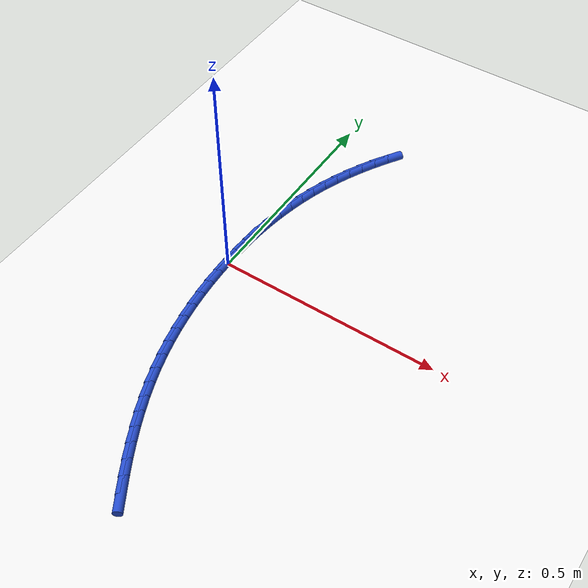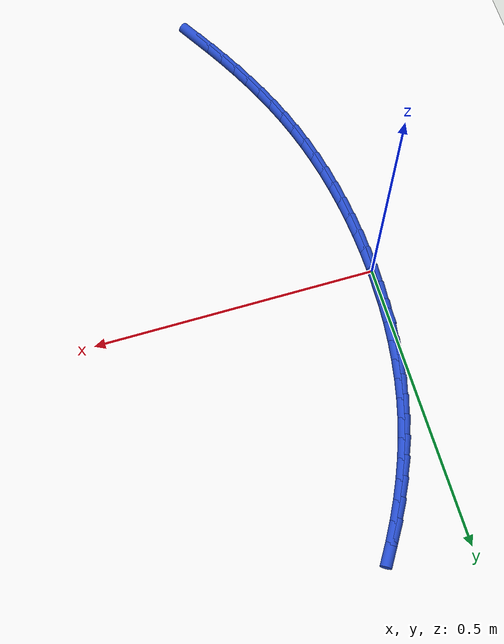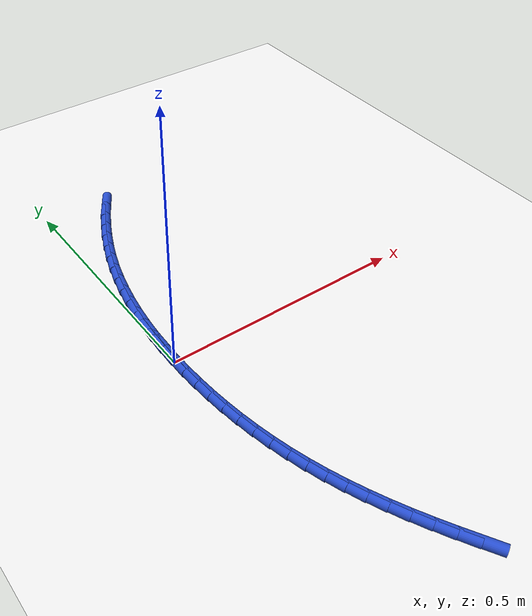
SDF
<sdf version="1.6">
 <world name="default">
  <model name="ground_plane">
   <static>1</static>
   <link name="link">
    <collision name="collision">
     <geometry><plane><normal>0 0 1</normal><size>100 100</size></plane></geometry>
     <surface><friction><ode><mu>100</mu><mu2>50</mu2></ode></friction></surface>
    </collision>
    <visual name="visual">
     <cast_shadows>0</cast_shadows>
     <geometry><plane><normal>0 0 1</normal><size>100 100</size></plane></geometry>
     <material>
      <script><uri>file://media/materials/scripts/gazebo.material</uri><name>Gazebo/WhiteGlow</name></script>
     </material>
    </visual>
   </link>
  </model>
  <model name="line">
   <link name="link_0">
    <pose>1.9949319973733282e-17 5.551115123125783e-17 0.01 0 1.57 1.5623673042592516</pose>
    <collision name="collision">
     <geometry><cylinder><radius>0.01</radius><length>0.08</length></cylinder></geometry>
    </collision>
    <visual name="visual">
     <material>
      <script><name>Gazebo/Blue</name><uri>file://media/materials/scripts/gazebo.material</uri></script>
     </material>
     <geometry><cylinder><radius>0.01</radius><length>0.08</length></cylinder></geometry>
    </visual>
   </link>
   <link name="link_1">
    <pose>0.0002909454988560638 0.03451629262906619 0.01 0 1.57 1.5297102532509206</pose>
    <collision name="collision">
     <geometry><cylinder><radius>0.01</radius><length>0.08</length></cylinder></geometry>
    </collision>
    <visual name="visual">
     <material>
      <script><name>Gazebo/Blue</name><uri>file://media/materials/scripts/gazebo.material</uri></script>
     </material>
     <geometry><cylinder><radius>0.01</radius><length>0.08</length></cylinder></geometry>
    </visual>
   </link>
   <link name="link_2">
    <pose>0.0017065868075871354 0.0689524052087415 0.01 0 1.57 1.4953168891294837</pose>
    <collision name="collision">
     <geometry><cylinder><radius>0.01</radius><length>0.08</length></cylinder></geometry>
    </collision>
    <visual name="visual">
     <material>
      <script><name>Gazebo/Blue</name><uri>file://media/materials/scripts/gazebo.material</uri></script>
     </material>
     <geometry><cylinder><radius>0.01</radius><length>0.08</length></cylinder></geometry>
    </visual>
   </link>
   <link name="link_3">
    <pose>0.0043013560823109195 0.1032642640348845 0.01 0 1.57 1.459138099619481</pose>
    <collision name="collision">
     <geometry><cylinder><radius>0.01</radius><length>0.08</length></cylinder></geometry>
    </collision>
    <visual name="visual">
     <material>
      <script><name>Gazebo/Blue</name><uri>file://media/materials/scripts/gazebo.material</uri></script>
     </material>
     <geometry><cylinder><radius>0.01</radius><length>0.08</length></cylinder></geometry>
    </visual>
   </link>
   <link name="link_4">
    <pose>0.00812968547914511 0.1374077954033538 0.01 0 1.57 1.4211382745538208</pose>
    <collision name="collision">
     <geometry><cylinder><radius>0.01</radius><length>0.08</length></cylinder></geometry>
    </collision>
    <visual name="visual">
     <material>
      <script><name>Gazebo/Blue</name><uri>file://media/materials/scripts/gazebo.material</uri></script>
     </material>
     <geometry><cylinder><radius>0.01</radius><length>0.08</length></cylinder></geometry>
    </visual>
   </link>
   <link name="link_5">
    <pose>0.013246007154207396 0.1713389256100079 0.01 0 1.57 1.3812991831218653</pose>
    <collision name="collision">
     <geometry><cylinder><radius>0.01</radius><length>0.08</length></cylinder></geometry>
    </collision>
    <visual name="visual">
     <material>
      <script><name>Gazebo/Blue</name><uri>file://media/materials/scripts/gazebo.material</uri></script>
     </material>
     <geometry><cylinder><radius>0.01</radius><length>0.08</length></cylinder></geometry>
    </visual>
   </link>
   <link name="link_6">
    <pose>0.019704753263615468 0.2050135809507054 0.01 0 1.57 1.3396241294312707</pose>
    <collision name="collision">
     <geometry><cylinder><radius>0.01</radius><length>0.08</length></cylinder></geometry>
    </collision>
    <visual name="visual">
     <material>
      <script><name>Gazebo/Blue</name><uri>file://media/materials/scripts/gazebo.material</uri></script>
     </material>
     <geometry><cylinder><radius>0.01</radius><length>0.08</length></cylinder></geometry>
    </visual>
   </link>
   <link name="link_7">
    <pose>0.027560355963487035 0.23838768772130486 0.01 0 1.57 1.296142189354954</pose>
    <collision name="collision">
     <geometry><cylinder><radius>0.01</radius><length>0.08</length></cylinder></geometry>
    </collision>
    <visual name="visual">
     <material>
      <script><name>Gazebo/Blue</name><uri>file://media/materials/scripts/gazebo.material</uri></script>
     </material>
     <geometry><cylinder><radius>0.01</radius><length>0.08</length></cylinder></geometry>
    </visual>
   </link>
   <link name="link_8">
    <pose>0.03686724740993974 0.2714171722176647 0.01 0 1.57 1.2509273169655566</pose>
    <collision name="collision">
     <geometry><cylinder><radius>0.01</radius><length>0.08</length></cylinder></geometry>
    </collision>
    <visual name="visual">
     <material>
      <script><name>Gazebo/Blue</name><uri>file://media/materials/scripts/gazebo.material</uri></script>
     </material>
     <geometry><cylinder><radius>0.01</radius><length>0.08</length></cylinder></geometry>
    </visual>
   </link>
   <link name="link_9">
    <pose>0.047679331502748376 0.3040580137497771 0.01 0 1.57 1.2053582620434384</pose>
    <collision name="collision">
     <geometry><cylinder><radius>0.01</radius><length>0.08</length></cylinder></geometry>
    </collision>
    <visual name="visual">
     <material>
      <script><name>Gazebo/Blue</name><uri>file://media/materials/scripts/gazebo.material</uri></script>
     </material>
     <geometry><cylinder><radius>0.01</radius><length>0.08</length></cylinder></geometry>
    </visual>
   </link>
   <link name="link_10">
    <pose>0.060004717376022476 0.33627078744526323 0.01 0 1.57 1.1617174851392114</pose>
    <collision name="collision">
     <geometry><cylinder><radius>0.01</radius><length>0.08</length></cylinder></geometry>
    </collision>
    <visual name="visual">
     <material>
      <script><name>Gazebo/Blue</name><uri>file://media/materials/scripts/gazebo.material</uri></script>
     </material>
     <geometry><cylinder><radius>0.01</radius><length>0.08</length></cylinder></geometry>
    </visual>
   </link>
   <link name="link_11">
    <pose>0.07377095935128009 0.36802415265758376 0.01 0 1.57 1.1201609324612012</pose>
    <collision name="collision">
     <geometry><cylinder><radius>0.01</radius><length>0.08</length></cylinder></geometry>
    </collision>
    <visual name="visual">
     <material>
      <script><name>Gazebo/Blue</name><uri>file://media/materials/scripts/gazebo.material</uri></script>
     </material>
     <geometry><cylinder><radius>0.01</radius><length>0.08</length></cylinder></geometry>
    </visual>
   </link>
   <link name="link_12">
    <pose>0.08889742850880628 0.39928758998436864 0.01 0 1.57 1.0805907010333862</pose>
    <collision name="collision">
     <geometry><cylinder><radius>0.01</radius><length>0.08</length></cylinder></geometry>
    </collision>
    <visual name="visual">
     <material>
      <script><name>Gazebo/Blue</name><uri>file://media/materials/scripts/gazebo.material</uri></script>
     </material>
     <geometry><cylinder><radius>0.01</radius><length>0.08</length></cylinder></geometry>
    </visual>
   </link>
   <link name="link_13">
    <pose>0.10530349592888621 0.4300305800232486 0.01 0 1.57 1.0428943098141974</pose>
    <collision name="collision">
     <geometry><cylinder><radius>0.01</radius><length>0.08</length></cylinder></geometry>
    </collision>
    <visual name="visual">
     <material>
      <script><name>Gazebo/Blue</name><uri>file://media/materials/scripts/gazebo.material</uri></script>
     </material>
     <geometry><cylinder><radius>0.01</radius><length>0.08</length></cylinder></geometry>
    </visual>
   </link>
   <link name="link_14">
    <pose>0.122908532691805 0.4602226033718537 0.01 0 1.57 1.006949480206665</pose>
    <collision name="collision">
     <geometry><cylinder><radius>0.01</radius><length>0.08</length></cylinder></geometry>
    </collision>
    <visual name="visual">
     <material>
      <script><name>Gazebo/Blue</name><uri>file://media/materials/scripts/gazebo.material</uri></script>
     </material>
     <geometry><cylinder><radius>0.01</radius><length>0.08</length></cylinder></geometry>
    </visual>
   </link>
   <link name="link_193">
    <pose>0.16569128008060713 -0.5503210508945563 0.01 0 1.57 -1.0292047934752364</pose>
    <collision name="collision">
     <geometry><cylinder><radius>0.01</radius><length>0.08</length></cylinder></geometry>
    </collision>
    <visual name="visual">
     <material>
      <script><name>Gazebo/Blue</name><uri>file://media/materials/scripts/gazebo.material</uri></script>
     </material>
     <geometry><cylinder><radius>0.01</radius><length>0.08</length></cylinder></geometry>
    </visual>
   </link>
   <link name="link_194">
    <pose>0.14743791719852486 -0.5199794419533103 0.01 0 1.57 -1.0510613342607587</pose>
    <collision name="collision">
     <geometry><cylinder><radius>0.01</radius><length>0.08</length></cylinder></geometry>
    </collision>
    <visual name="visual">
     <material>
      <script><name>Gazebo/Blue</name><uri>file://media/materials/scripts/gazebo.material</uri></script>
     </material>
     <geometry><cylinder><radius>0.01</radius><length>0.08</length></cylinder></geometry>
    </visual>
   </link>
   <link name="link_195">
    <pose>0.13009624071883205 -0.48967295221450496 0.01 0 1.57 -1.0756627278853617</pose>
    <collision name="collision">
     <geometry><cylinder><radius>0.01</radius><length>0.08</length></cylinder></geometry>
    </collision>
    <visual name="visual">
     <material>
      <script><name>Gazebo/Blue</name><uri>file://media/materials/scripts/gazebo.material</uri></script>
     </material>
     <geometry><cylinder><radius>0.01</radius><length>0.08</length></cylinder></geometry>
    </visual>
   </link>
   <link name="link_196">
    <pose>0.11370524300098266 -0.45931927709053777 0.01 0 1.57 -1.1029651897677524</pose>
    <collision name="collision">
     <geometry><cylinder><radius>0.01</radius><length>0.08</length></cylinder></geometry>
    </collision>
    <visual name="visual">
     <material>
      <script><name>Gazebo/Blue</name><uri>file://media/materials/scripts/gazebo.material</uri></script>
     </material>
     <geometry><cylinder><radius>0.01</radius><length>0.08</length></cylinder></geometry>
    </visual>
   </link>
   <link name="link_197">
    <pose>0.09830391640443162 -0.4288361119938083 0.01 0 1.57 -1.1328765002648287</pose>
    <collision name="collision">
     <geometry><cylinder><radius>0.01</radius><length>0.08</length></cylinder></geometry>
    </collision>
    <visual name="visual">
     <material>
      <script><name>Gazebo/Blue</name><uri>file://media/materials/scripts/gazebo.material</uri></script>
     </material>
     <geometry><cylinder><radius>0.01</radius><length>0.08</length></cylinder></geometry>
    </visual>
   </link>
   <link name="link_198">
    <pose>0.08393125328863284 -0.3981411523367139 0.01 0 1.57 -1.1652509214708162</pose>
    <collision name="collision">
     <geometry><cylinder><radius>0.01</radius><length>0.08</length></cylinder></geometry>
    </collision>
    <visual name="visual">
     <material>
      <script><name>Gazebo/Blue</name><uri>file://media/materials/scripts/gazebo.material</uri></script>
     </material>
     <geometry><cylinder><radius>0.01</radius><length>0.08</length></cylinder></geometry>
    </visual>
   </link>
   <link name="link_199">
    <pose>0.07062624601304053 -0.36715209353165296 0.01 0 1.57 -1.1998862284343892</pose>
    <collision name="collision">
     <geometry><cylinder><radius>0.01</radius><length>0.08</length></cylinder></geometry>
    </collision>
    <visual name="visual">
     <material>
      <script><name>Gazebo/Blue</name><uri>file://media/materials/scripts/gazebo.material</uri></script>
     </material>
     <geometry><cylinder><radius>0.01</radius><length>0.08</length></cylinder></geometry>
    </visual>
   </link>
   <link name="link_200">
    <pose>0.05842788693710896 -0.3357866309910235 0.01 0 1.57 -1.2365237159026548</pose>
    <collision name="collision">
     <geometry><cylinder><radius>0.01</radius><length>0.08</length></cylinder></geometry>
    </collision>
    <visual name="visual">
     <material>
      <script><name>Gazebo/Blue</name><uri>file://media/materials/scripts/gazebo.material</uri></script>
     </material>
     <geometry><cylinder><radius>0.01</radius><length>0.08</length></cylinder></geometry>
    </visual>
   </link>
   <link name="link_201">
    <pose>0.04737516842029235 -0.3039624601272238 0.01 0 1.57 -1.2746813853770274</pose>
    <collision name="collision">
     <geometry><cylinder><radius>0.01</radius><length>0.08</length></cylinder></geometry>
    </collision>
    <visual name="visual">
     <material>
      <script><name>Gazebo/Blue</name><uri>file://media/materials/scripts/gazebo.material</uri></script>
     </material>
     <geometry><cylinder><radius>0.01</radius><length>0.08</length></cylinder></geometry>
    </visual>
   </link>
   <link name="link_202">
    <pose>0.03750384743618298 -0.27160643986606714 0.01 0 1.57 -1.3124542245453776</pose>
    <collision name="collision">
     <geometry><cylinder><radius>0.01</radius><length>0.08</length></cylinder></geometry>
    </collision>
    <visual name="visual">
     <material>
      <script><name>Gazebo/Blue</name><uri>file://media/materials/scripts/gazebo.material</uri></script>
     </material>
     <geometry><cylinder><radius>0.01</radius><length>0.08</length></cylinder></geometry>
    </visual>
   </link>
   <link name="link_203">
    <pose>0.028817832220894016 -0.23873563362385172 0.01 0 1.57 -1.3489526898535336</pose>
    <collision name="collision">
     <geometry><cylinder><radius>0.01</radius><length>0.08</length></cylinder></geometry>
    </collision>
    <visual name="visual">
     <material>
      <script><name>Gazebo/Blue</name><uri>file://media/materials/scripts/gazebo.material</uri></script>
     </material>
     <geometry><cylinder><radius>0.01</radius><length>0.08</length></cylinder></geometry>
    </visual>
   </link>
   <link name="link_204">
    <pose>0.021302925258408566 -0.20541838534711937 0.01 0 1.57 -1.38428924510956</pose>
    <collision name="collision">
     <geometry><cylinder><radius>0.01</radius><length>0.08</length></cylinder></geometry>
    </collision>
    <visual name="visual">
     <material>
      <script><name>Gazebo/Blue</name><uri>file://media/materials/scripts/gazebo.material</uri></script>
     </material>
     <geometry><cylinder><radius>0.01</radius><length>0.08</length></cylinder></geometry>
    </visual>
   </link>
   <link name="link_205">
    <pose>0.014944720177434298 -0.17172363051869377 0.01 0 1.57 -1.4185886301740562</pose>
    <collision name="collision">
     <geometry><cylinder><radius>0.01</radius><length>0.08</length></cylinder></geometry>
    </collision>
    <visual name="visual">
     <material>
      <script><name>Gazebo/Blue</name><uri>file://media/materials/scripts/gazebo.material</uri></script>
     </material>
     <geometry><cylinder><radius>0.01</radius><length>0.08</length></cylinder></geometry>
    </visual>
   </link>
   <link name="link_206">
    <pose>0.009728810606678922 -0.1377203046213988 0.01 0 1.57 -1.4519758890947336</pose>
    <collision name="collision">
     <geometry><cylinder><radius>0.01</radius><length>0.08</length></cylinder></geometry>
    </collision>
    <visual name="visual">
     <material>
      <script><name>Gazebo/Blue</name><uri>file://media/materials/scripts/gazebo.material</uri></script>
     </material>
     <geometry><cylinder><radius>0.01</radius><length>0.08</length></cylinder></geometry>
    </visual>
   </link>
   <link name="link_207">
    <pose>0.00564079017485012 -0.1034773431380582 0.01 0 1.57 -1.484575826198701</pose>
    <collision name="collision">
     <geometry><cylinder><radius>0.01</radius><length>0.08</length></cylinder></geometry>
    </collision>
    <visual name="visual">
     <material>
      <script><name>Gazebo/Blue</name><uri>file://media/materials/scripts/gazebo.material</uri></script>
     </material>
     <geometry><cylinder><radius>0.01</radius><length>0.08</length></cylinder></geometry>
    </visual>
   </link>
   <link name="link_208">
    <pose>0.0026662525106555786 -0.06906368155149568 0.01 0 1.57 -1.5165128086413957</pose>
    <collision name="collision">
     <geometry><cylinder><radius>0.01</radius><length>0.08</length></cylinder></geometry>
    </collision>
    <visual name="visual">
     <material>
      <script><name>Gazebo/Blue</name><uri>file://media/materials/scripts/gazebo.material</uri></script>
     </material>
     <geometry><cylinder><radius>0.01</radius><length>0.08</length></cylinder></geometry>
    </visual>
   </link>
   <link name="link_209">
    <pose>0.0007907912428029564 -0.03454825534453426 0.01 0 1.57 -1.54791085334705</pose>
    <collision name="collision">
     <geometry><cylinder><radius>0.01</radius><length>0.08</length></cylinder></geometry>
    </collision>
    <visual name="visual">
     <material>
      <script><name>Gazebo/Blue</name><uri>file://media/materials/scripts/gazebo.material</uri></script>
     </material>
     <geometry><cylinder><radius>0.01</radius><length>0.08</length></cylinder></geometry>
    </visual>
   </link>
   <link name="link_210">
    <pose>3.2959746043559335e-17 -6.938893903907228e-17 0.01 0 1.57 1.5626987057959385</pose>
    <collision name="collision">
     <geometry><cylinder><radius>0.01</radius><length>0.08</length></cylinder></geometry>
    </collision>
    <visual name="visual">
     <material>
      <script><name>Gazebo/Blue</name><uri>file://media/materials/scripts/gazebo.material</uri></script>
     </material>
     <geometry><cylinder><radius>0.01</radius><length>0.08</length></cylinder></geometry>
    </visual>
   </link>
   <link name="link_211">
    <pose>0.00027947241095440355 0.03451214899928555 0.01 0 1.57 1.532006088764102</pose>
    <collision name="collision">
     <geometry><cylinder><radius>0.01</radius><length>0.08</length></cylinder></geometry>
    </collision>
    <visual name="visual">
     <material>
      <script><name>Gazebo/Blue</name><uri>file://media/materials/scripts/gazebo.material</uri></script>
     </material>
     <geometry><cylinder><radius>0.01</radius><length>0.08</length></cylinder></geometry>
    </visual>
   </link>
   <link name="link_212">
    <pose>0.0016148021043738761 0.06891925617049964 0.01 0 1.57 1.5473702657383943</pose>
    <collision name="collision">
     <geometry><cylinder><radius>0.01</radius><length>0.08</length></cylinder></geometry>
    </collision>
    <visual name="visual">
     <material>
      <script><name>Gazebo/Blue</name><uri>file://media/materials/scripts/gazebo.material</uri></script>
     </material>
     <geometry><cylinder><radius>0.01</radius><length>0.08</length></cylinder></geometry>
    </visual>
   </link>
  </model>
 </world>
</sdf>
